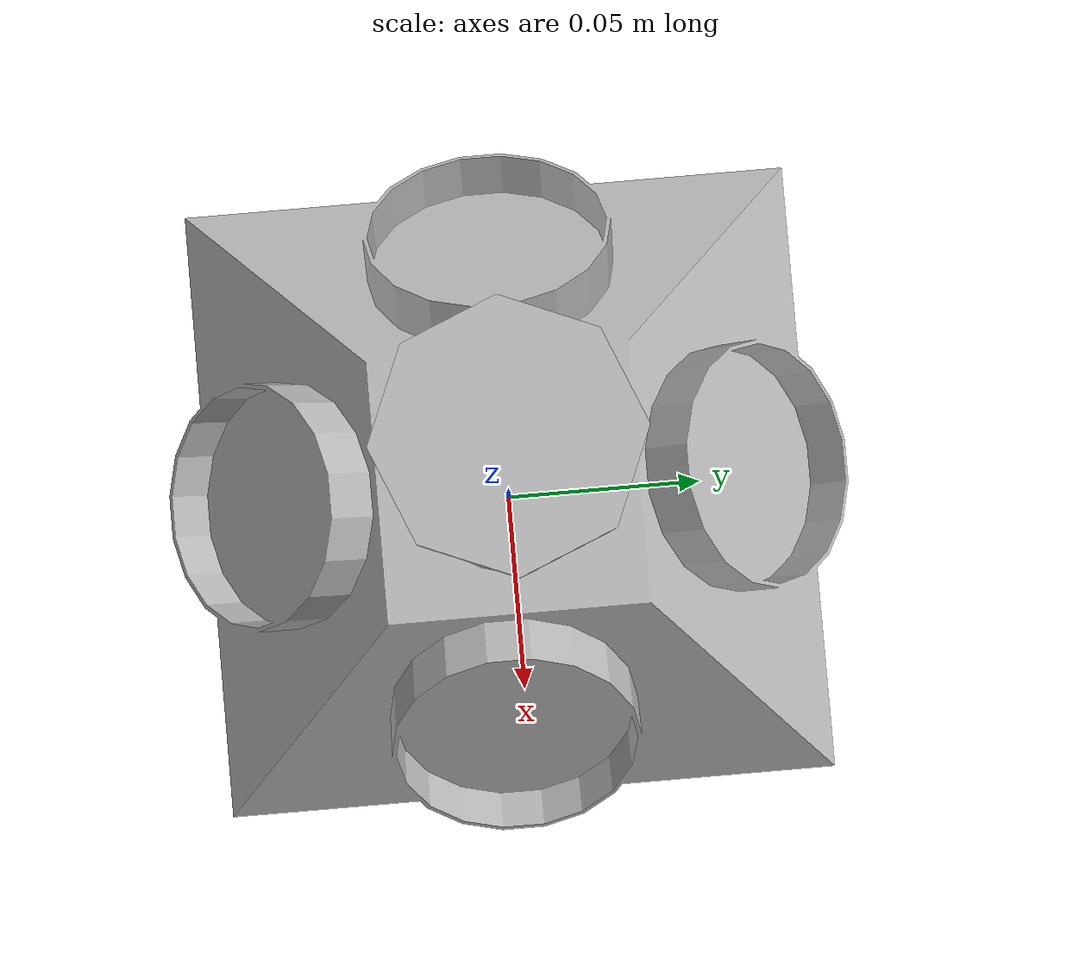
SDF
<?xml version="1.0" ?>
<sdf version="1.5">
  <model name="object_robocup_pipestar">
    <static>false</static>
    <self_collide>true</self_collide>
    <link name="Pipestar_base">
		<inertial>
			<pose>0 0 0.027404 0 0 0</pose>
			<mass>3.0</mass>
			<inertia>
				<ixx>0.1</ixx>
				<ixy>0.0</ixy>
				<ixz>0.0</ixz>
				<iyy>0.1</iyy>
				<iyz>0.0</iyz>
				<izz>0.1</izz>
			</inertia>
		</inertial>
      <collision name="Base">
        <pose>0 0 0 0 0 0</pose>
        <geometry>
          <mesh>
            <uri>model://object_robocup_pipestar/meshes/Pipestar.dae</uri>
          </mesh>
        </geometry>
      </collision>
      <visual name="visual">
		<pose>0 0 0 0 0 0</pose>
        <geometry>
          <mesh>
            <uri>model://object_robocup_pipestar/meshes/Pipestar.dae</uri>
          </mesh>
        </geometry>
      </visual>
    </link>

    <link name="PipeCap">
	  <pose>0 0 0.18 0 0 0</pose>
	  <inertial>
			<pose>0 0 0.0515 0 0 0</pose>
			<mass>0.15</mass>
			<inertia>
				<ixx>1.800875e-4</ixx>
				<ixy>0.0</ixy>
				<ixz>0.0</ixz>
				<iyy>1.800875e-4</iyy>
				<iyz>0.0</iyz>
				<izz>6.25e-5</izz>
			</inertia>
		</inertial>
      <collision name="Pipe1_col">
        <pose>0 0 0 0 0 0</pose>
        <geometry>
          <mesh>
            <uri>model://object_robocup_pipestar/meshes/PipestarHead_collision.dae</uri>
          </mesh>
        </geometry>
        <surface>
			<contact>
				<ode>
					<kp>1000000.0</kp>
					<kd>1.0</kd>
					<max_vel>0.0</max_vel>
					<min_depth>0.001</min_depth>
				</ode>
			</contact>
			<friction>
				<ode>
					<mu>100</mu>
					<mu2>100</mu2>
				</ode>
			</friction>
        </surface>
      </collision>
      <collision name="Pipe1">
        <pose>0 0 0.03095 0 0 0</pose>
        <geometry>
        	 <cylinder>
              <radius>0.0155</radius>
              <length>0.062</length>
            </cylinder>
        </geometry>
        <surface>
			<contact>
				<ode>
					<kp>1000000.0</kp>
					<kd>1.0</kd>
					<max_vel>0.0</max_vel>
					<min_depth>0.001</min_depth>
				</ode>
			</contact>
			<friction>
				<ode>
					<mu>100</mu>
					<mu2>100</mu2>
				</ode>
			</friction>
        </surface>
      </collision>
      <collision name="Pipe2">
        <pose>0 0 0.07571 0 0 0</pose>
        <geometry>
        	 <cylinder>
              <radius>0.0215</radius>
              <length>0.0215</length>
            </cylinder>
        </geometry>
        <surface>
			<contact>
				<ode>
					<kp>1000000.0</kp>
					<kd>1.0</kd>
					<max_vel>0.0</max_vel>
					<min_depth>0.001</min_depth>
				</ode>
			</contact>
			<friction>
				<ode>
					<mu>100</mu>
					<mu2>100</mu2>
				</ode>
			</friction>
        </surface>
      </collision>
      <visual name="Pipe1_vis">
		<pose>0 0 0 0 0 0</pose>
        <geometry>
          <mesh>
            <uri>model://object_robocup_pipestar/meshes/PipestarHead.dae</uri>
          </mesh>
        </geometry>
      </visual>
    </link>
  </model>
</sdf>
